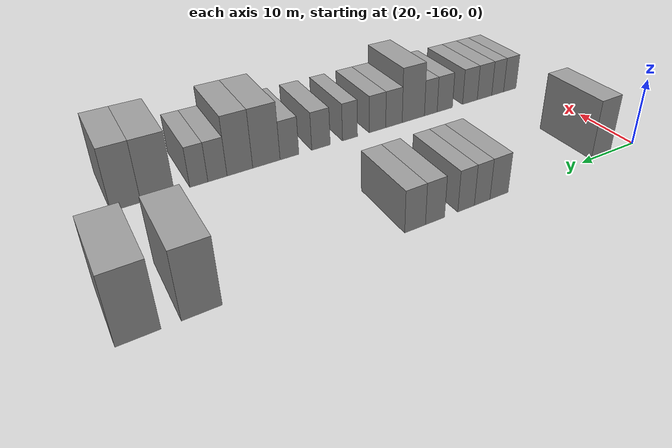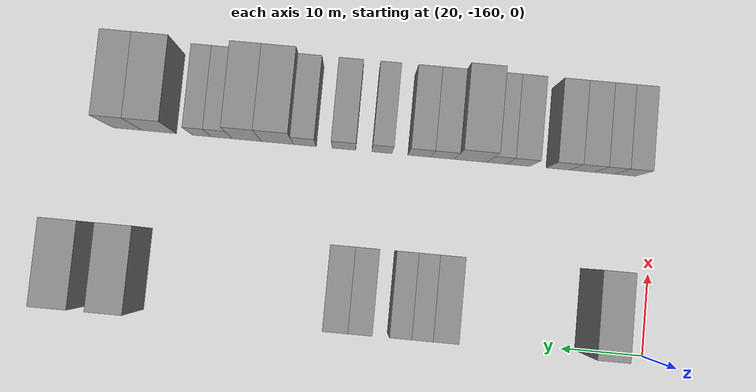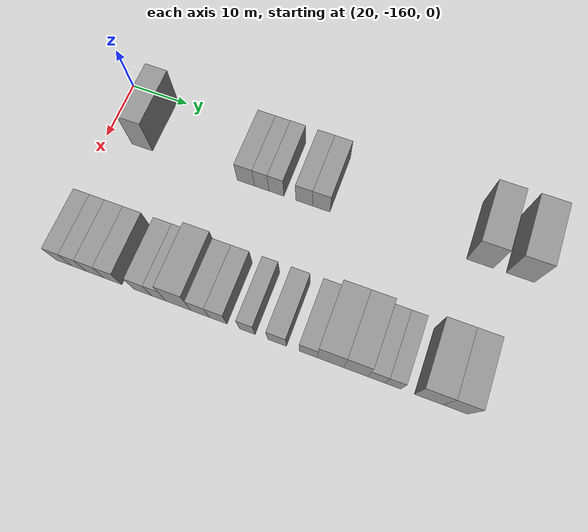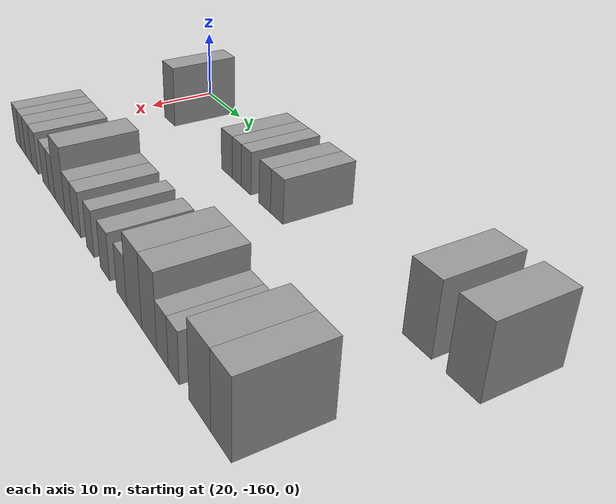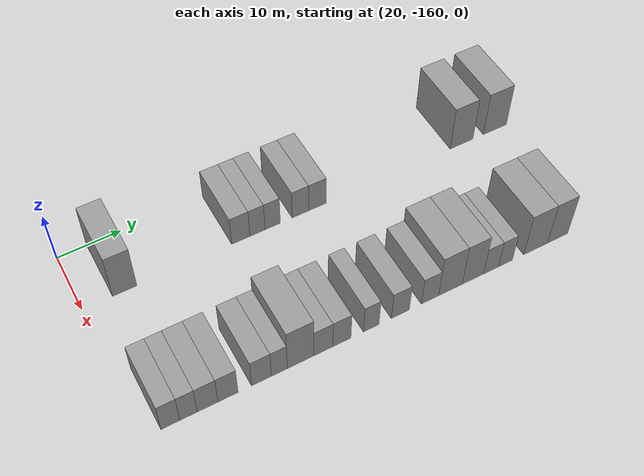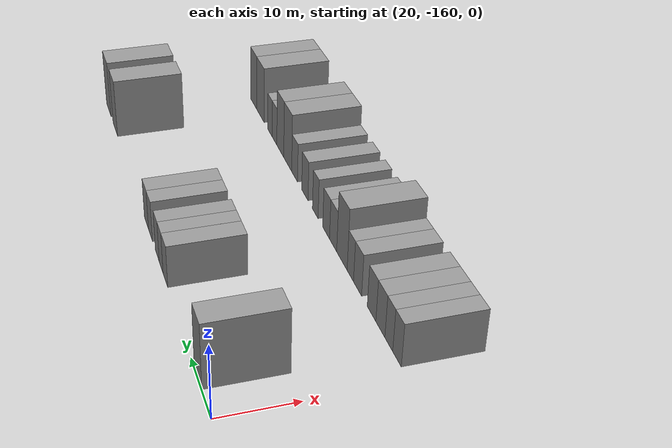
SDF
<sdf version="1.6">
 <world name="default">
  <model name="building_15">
   <static>1</static>
   <pose>25.0000 -153.5382 0 0.000000 0.000000 0.000000</pose>
   <link name="link">
    <pose>0 0 4.50 0 0 0</pose>
    <collision name="collision"><geometry><box><size>10.0000 3.7095 9.0000</size></box></geometry></collision>
    <visual name="visual">
     <cast_shadows>0</cast_shadows>
     <geometry><box><size>10.0000 3.7095 9.0000</size></box></geometry>
     <material>
      <script>
       <uri>model://grey_wall/materials/scripts</uri>
       <uri>model://grey_wall/materials/textures</uri>
       <name>vrc/grey_wall</name>
      </script>
     </material>
    </visual>
   </link>
  </model>
  <model name="building_16">
   <static>1</static>
   <pose>25.0000 -135.2273 0 0.000000 0.000000 0.000000</pose>
   <link name="link">
    <pose>0 0 3.00 0 0 0</pose>
    <collision name="collision"><geometry><box><size>10.0000 2.9708 6.0000</size></box></geometry></collision>
    <visual name="visual">
     <cast_shadows>0</cast_shadows>
     <geometry><box><size>10.0000 2.9708 6.0000</size></box></geometry>
     <material>
      <script>
       <uri>model://grey_wall/materials/scripts</uri>
       <uri>model://grey_wall/materials/textures</uri>
       <name>vrc/grey_wall</name>
      </script>
     </material>
    </visual>
   </link>
  </model>
  <model name="building_17">
   <static>1</static>
   <pose>25.0000 -132.5023 0 0.000000 0.000000 0.000000</pose>
   <link name="link">
    <pose>0 0 3.00 0 0 0</pose>
    <collision name="collision"><geometry><box><size>10.0000 2.4791 6.0000</size></box></geometry></collision>
    <visual name="visual">
     <cast_shadows>0</cast_shadows>
     <geometry><box><size>10.0000 2.4791 6.0000</size></box></geometry>
     <material>
      <script>
       <uri>model://grey_wall/materials/scripts</uri>
       <uri>model://grey_wall/materials/textures</uri>
       <name>vrc/grey_wall</name>
      </script>
     </material>
    </visual>
   </link>
  </model>
  <model name="building_18">
   <static>1</static>
   <pose>25.0000 -129.9862 0 0.000000 0.000000 0.000000</pose>
   <link name="link">
    <pose>0 0 3.00 0 0 0</pose>
    <collision name="collision"><geometry><box><size>10.0000 2.5531 6.0000</size></box></geometry></collision>
    <visual name="visual">
     <cast_shadows>0</cast_shadows>
     <geometry><box><size>10.0000 2.5531 6.0000</size></box></geometry>
     <material>
      <script>
       <uri>model://grey_wall/materials/scripts</uri>
       <uri>model://grey_wall/materials/textures</uri>
       <name>vrc/grey_wall</name>
      </script>
     </material>
    </visual>
   </link>
  </model>
  <model name="building_19">
   <static>1</static>
   <pose>25.0000 -125.3027 0 0.000000 0.000000 0.000000</pose>
   <link name="link">
    <pose>0 0 3.00 0 0 0</pose>
    <collision name="collision"><geometry><box><size>10.0000 2.8138 6.0000</size></box></geometry></collision>
    <visual name="visual">
     <cast_shadows>0</cast_shadows>
     <geometry><box><size>10.0000 2.8138 6.0000</size></box></geometry>
     <material>
      <script>
       <uri>model://grey_wall/materials/scripts</uri>
       <uri>model://grey_wall/materials/textures</uri>
       <name>vrc/grey_wall</name>
      </script>
     </material>
    </visual>
   </link>
  </model>
  <model name="building_20">
   <static>1</static>
   <pose>25.0000 -122.4214 0 0.000000 0.000000 0.000000</pose>
   <link name="link">
    <pose>0 0 3.00 0 0 0</pose>
    <collision name="collision"><geometry><box><size>10.0000 2.9488 6.0000</size></box></geometry></collision>
    <visual name="visual">
     <cast_shadows>0</cast_shadows>
     <geometry><box><size>10.0000 2.9488 6.0000</size></box></geometry>
     <material>
      <script>
       <uri>model://grey_wall/materials/scripts</uri>
       <uri>model://grey_wall/materials/textures</uri>
       <name>vrc/grey_wall</name>
      </script>
     </material>
    </visual>
   </link>
  </model>
  <model name="building_21">
   <static>1</static>
   <pose>25.0000 -96.5870 0 0.000000 0.000000 0.000000</pose>
   <link name="link">
    <pose>0 0 4.50 0 0 0</pose>
    <collision name="collision"><geometry><box><size>10.0000 4.2400 9.0000</size></box></geometry></collision>
    <visual name="visual">
     <cast_shadows>0</cast_shadows>
     <geometry><box><size>10.0000 4.2400 9.0000</size></box></geometry>
     <material>
      <script>
       <uri>model://grey_wall/materials/scripts</uri>
       <uri>model://grey_wall/materials/textures</uri>
       <name>vrc/grey_wall</name>
      </script>
     </material>
    </visual>
   </link>
  </model>
  <model name="building_22">
   <static>1</static>
   <pose>25.0000 -90.2706 0 0.000000 0.000000 0.000000</pose>
   <link name="link">
    <pose>0 0 4.50 0 0 0</pose>
    <collision name="collision"><geometry><box><size>10.0000 4.3928 9.0000</size></box></geometry></collision>
    <visual name="visual">
     <cast_shadows>0</cast_shadows>
     <geometry><box><size>10.0000 4.3928 9.0000</size></box></geometry>
     <material>
      <script>
       <uri>model://grey_wall/materials/scripts</uri>
       <uri>model://grey_wall/materials/textures</uri>
       <name>vrc/grey_wall</name>
      </script>
     </material>
    </visual>
   </link>
  </model>
  <model name="building_114">
   <static>1</static>
   <pose>47.0000 -156.3037 0 0.000000 0.000000 0.000000</pose>
   <link name="link">
    <pose>0 0 3.00 0 0 0</pose>
    <collision name="collision"><geometry><box><size>10.0000 2.6709 6.0000</size></box></geometry></collision>
    <visual name="visual">
     <cast_shadows>0</cast_shadows>
     <geometry><box><size>10.0000 2.6709 6.0000</size></box></geometry>
     <material>
      <script>
       <uri>model://grey_wall/materials/scripts</uri>
       <uri>model://grey_wall/materials/textures</uri>
       <name>vrc/grey_wall</name>
      </script>
     </material>
    </visual>
   </link>
  </model>
  <model name="building_115">
   <static>1</static>
   <pose>47.0000 -153.7130 0 0.000000 0.000000 0.000000</pose>
   <link name="link">
    <pose>0 0 3.00 0 0 0</pose>
    <collision name="collision"><geometry><box><size>10.0000 2.5105 6.0000</size></box></geometry></collision>
    <visual name="visual">
     <cast_shadows>0</cast_shadows>
     <geometry><box><size>10.0000 2.5105 6.0000</size></box></geometry>
     <material>
      <script>
       <uri>model://grey_wall/materials/scripts</uri>
       <uri>model://grey_wall/materials/textures</uri>
       <name>vrc/grey_wall</name>
      </script>
     </material>
    </visual>
   </link>
  </model>
  <model name="building_116">
   <static>1</static>
   <pose>47.0000 -150.9631 0 0.000000 0.000000 0.000000</pose>
   <link name="link">
    <pose>0 0 3.00 0 0 0</pose>
    <collision name="collision"><geometry><box><size>10.0000 2.9893 6.0000</size></box></geometry></collision>
    <visual name="visual">
     <cast_shadows>0</cast_shadows>
     <geometry><box><size>10.0000 2.9893 6.0000</size></box></geometry>
     <material>
      <script>
       <uri>model://grey_wall/materials/scripts</uri>
       <uri>model://grey_wall/materials/textures</uri>
       <name>vrc/grey_wall</name>
      </script>
     </material>
    </visual>
   </link>
  </model>
  <model name="building_117">
   <static>1</static>
   <pose>47.0000 -147.9891 0 0.000000 0.000000 0.000000</pose>
   <link name="link">
    <pose>0 0 3.00 0 0 0</pose>
    <collision name="collision"><geometry><box><size>10.0000 2.9588 6.0000</size></box></geometry></collision>
    <visual name="visual">
     <cast_shadows>0</cast_shadows>
     <geometry><box><size>10.0000 2.9588 6.0000</size></box></geometry>
     <material>
      <script>
       <uri>model://grey_wall/materials/scripts</uri>
       <uri>model://grey_wall/materials/textures</uri>
       <name>vrc/grey_wall</name>
      </script>
     </material>
    </visual>
   </link>
  </model>
  <model name="building_118">
   <static>1</static>
   <pose>47.0000 -143.0278 0 0.000000 0.000000 0.000000</pose>
   <link name="link">
    <pose>0 0 3.00 0 0 0</pose>
    <collision name="collision"><geometry><box><size>10.0000 2.9638 6.0000</size></box></geometry></collision>
    <visual name="visual">
     <cast_shadows>0</cast_shadows>
     <geometry><box><size>10.0000 2.9638 6.0000</size></box></geometry>
     <material>
      <script>
       <uri>model://grey_wall/materials/scripts</uri>
       <uri>model://grey_wall/materials/textures</uri>
       <name>vrc/grey_wall</name>
      </script>
     </material>
    </visual>
   </link>
  </model>
  <model name="building_119">
   <static>1</static>
   <pose>47.0000 -140.3447 0 0.000000 0.000000 0.000000</pose>
   <link name="link">
    <pose>0 0 3.00 0 0 0</pose>
    <collision name="collision"><geometry><box><size>10.0000 2.4025 6.0000</size></box></geometry></collision>
    <visual name="visual">
     <cast_shadows>0</cast_shadows>
     <geometry><box><size>10.0000 2.4025 6.0000</size></box></geometry>
     <material>
      <script>
       <uri>model://grey_wall/materials/scripts</uri>
       <uri>model://grey_wall/materials/textures</uri>
       <name>vrc/grey_wall</name>
      </script>
     </material>
    </visual>
   </link>
  </model>
  <model name="building_120">
   <static>1</static>
   <pose>47.0000 -137.1026 0 0.000000 0.000000 0.000000</pose>
   <link name="link">
    <pose>0 0 4.50 0 0 0</pose>
    <collision name="collision"><geometry><box><size>10.0000 4.0817 9.0000</size></box></geometry></collision>
    <visual name="visual">
     <cast_shadows>0</cast_shadows>
     <geometry><box><size>10.0000 4.0817 9.0000</size></box></geometry>
     <material>
      <script>
       <uri>model://grey_wall/materials/scripts</uri>
       <uri>model://grey_wall/materials/textures</uri>
       <name>vrc/grey_wall</name>
      </script>
     </material>
    </visual>
   </link>
  </model>
  <model name="building_121">
   <static>1</static>
   <pose>47.0000 -133.6014 0 0.000000 0.000000 0.000000</pose>
   <link name="link">
    <pose>0 0 3.00 0 0 0</pose>
    <collision name="collision"><geometry><box><size>10.0000 2.9205 6.0000</size></box></geometry></collision>
    <visual name="visual">
     <cast_shadows>0</cast_shadows>
     <geometry><box><size>10.0000 2.9205 6.0000</size></box></geometry>
     <material>
      <script>
       <uri>model://grey_wall/materials/scripts</uri>
       <uri>model://grey_wall/materials/textures</uri>
       <name>vrc/grey_wall</name>
      </script>
     </material>
    </visual>
   </link>
  </model>
  <model name="building_122">
   <static>1</static>
   <pose>47.0000 -130.7134 0 0.000000 0.000000 0.000000</pose>
   <link name="link">
    <pose>0 0 3.00 0 0 0</pose>
    <collision name="collision"><geometry><box><size>10.0000 2.8555 6.0000</size></box></geometry></collision>
    <visual name="visual">
     <cast_shadows>0</cast_shadows>
     <geometry><box><size>10.0000 2.8555 6.0000</size></box></geometry>
     <material>
      <script>
       <uri>model://grey_wall/materials/scripts</uri>
       <uri>model://grey_wall/materials/textures</uri>
       <name>vrc/grey_wall</name>
      </script>
     </material>
    </visual>
   </link>
  </model>
  <model name="building_123">
   <static>1</static>
   <pose>47.0000 -126.0434 0 0.000000 0.000000 0.000000</pose>
   <link name="link">
    <pose>0 0 3.00 0 0 0</pose>
    <collision name="collision"><geometry><box><size>10.0000 2.4846 6.0000</size></box></geometry></collision>
    <visual name="visual">
     <cast_shadows>0</cast_shadows>
     <geometry><box><size>10.0000 2.4846 6.0000</size></box></geometry>
     <material>
      <script>
       <uri>model://grey_wall/materials/scripts</uri>
       <uri>model://grey_wall/materials/textures</uri>
       <name>vrc/grey_wall</name>
      </script>
     </material>
    </visual>
   </link>
  </model>
  <model name="building_124">
   <static>1</static>
   <pose>47.0000 -121.3351 0 0.000000 0.000000 0.000000</pose>
   <link name="link">
    <pose>0 0 3.00 0 0 0</pose>
    <collision name="collision"><geometry><box><size>10.0000 2.9320 6.0000</size></box></geometry></collision>
    <visual name="visual">
     <cast_shadows>0</cast_shadows>
     <geometry><box><size>10.0000 2.9320 6.0000</size></box></geometry>
     <material>
      <script>
       <uri>model://grey_wall/materials/scripts</uri>
       <uri>model://grey_wall/materials/textures</uri>
       <name>vrc/grey_wall</name>
      </script>
     </material>
    </visual>
   </link>
  </model>
  <model name="building_125">
   <static>1</static>
   <pose>47.0000 -116.4469 0 0.000000 0.000000 0.000000</pose>
   <link name="link">
    <pose>0 0 3.00 0 0 0</pose>
    <collision name="collision"><geometry><box><size>10.0000 2.8444 6.0000</size></box></geometry></collision>
    <visual name="visual">
     <cast_shadows>0</cast_shadows>
     <geometry><box><size>10.0000 2.8444 6.0000</size></box></geometry>
     <material>
      <script>
       <uri>model://grey_wall/materials/scripts</uri>
       <uri>model://grey_wall/materials/textures</uri>
       <name>vrc/grey_wall</name>
      </script>
     </material>
    </visual>
   </link>
  </model>
  <model name="building_126">
   <static>1</static>
   <pose>47.0000 -113.0210 0 0.000000 0.000000 0.000000</pose>
   <link name="link">
    <pose>0 0 4.50 0 0 0</pose>
    <collision name="collision"><geometry><box><size>10.0000 4.0075 9.0000</size></box></geometry></collision>
    <visual name="visual">
     <cast_shadows>0</cast_shadows>
     <geometry><box><size>10.0000 4.0075 9.0000</size></box></geometry>
     <material>
      <script>
       <uri>model://grey_wall/materials/scripts</uri>
       <uri>model://grey_wall/materials/textures</uri>
       <name>vrc/grey_wall</name>
      </script>
     </material>
    </visual>
   </link>
  </model>
  <model name="building_127">
   <static>1</static>
   <pose>47.0000 -109.2031 0 0.000000 0.000000 0.000000</pose>
   <link name="link">
    <pose>0 0 4.50 0 0 0</pose>
    <collision name="collision"><geometry><box><size>10.0000 3.6282 9.0000</size></box></geometry></collision>
    <visual name="visual">
     <cast_shadows>0</cast_shadows>
     <geometry><box><size>10.0000 3.6282 9.0000</size></box></geometry>
     <material>
      <script>
       <uri>model://grey_wall/materials/scripts</uri>
       <uri>model://grey_wall/materials/textures</uri>
       <name>vrc/grey_wall</name>
      </script>
     </material>
    </visual>
   </link>
  </model>
  <model name="building_128">
   <static>1</static>
   <pose>47.0000 -106.0815 0 0.000000 0.000000 0.000000</pose>
   <link name="link">
    <pose>0 0 3.00 0 0 0</pose>
    <collision name="collision"><geometry><box><size>10.0000 2.6151 6.0000</size></box></geometry></collision>
    <visual name="visual">
     <cast_shadows>0</cast_shadows>
     <geometry><box><size>10.0000 2.6151 6.0000</size></box></geometry>
     <material>
      <script>
       <uri>model://grey_wall/materials/scripts</uri>
       <uri>model://grey_wall/materials/textures</uri>
       <name>vrc/grey_wall</name>
      </script>
     </material>
    </visual>
   </link>
  </model>
  <model name="building_129">
   <static>1</static>
   <pose>47.0000 -103.5682 0 0.000000 0.000000 0.000000</pose>
   <link name="link">
    <pose>0 0 3.00 0 0 0</pose>
    <collision name="collision"><geometry><box><size>10.0000 2.4115 6.0000</size></box></geometry></collision>
    <visual name="visual">
     <cast_shadows>0</cast_shadows>
     <geometry><box><size>10.0000 2.4115 6.0000</size></box></geometry>
     <material>
      <script>
       <uri>model://grey_wall/materials/scripts</uri>
       <uri>model://grey_wall/materials/textures</uri>
       <name>vrc/grey_wall</name>
      </script>
     </material>
    </visual>
   </link>
  </model>
  <model name="building_130">
   <static>1</static>
   <pose>47.0000 -98.2461 0 0.000000 0.000000 0.000000</pose>
   <link name="link">
    <pose>0 0 4.50 0 0 0</pose>
    <collision name="collision"><geometry><box><size>10.0000 4.2326 9.0000</size></box></geometry></collision>
    <visual name="visual">
     <cast_shadows>0</cast_shadows>
     <geometry><box><size>10.0000 4.2326 9.0000</size></box></geometry>
     <material>
      <script>
       <uri>model://grey_wall/materials/scripts</uri>
       <uri>model://grey_wall/materials/textures</uri>
       <name>vrc/grey_wall</name>
      </script>
     </material>
    </visual>
   </link>
  </model>
  <model name="building_131">
   <static>1</static>
   <pose>47.0000 -94.3024 0 0.000000 0.000000 0.000000</pose>
   <link name="link">
    <pose>0 0 4.50 0 0 0</pose>
    <collision name="collision"><geometry><box><size>10.0000 3.6549 9.0000</size></box></geometry></collision>
    <visual name="visual">
     <cast_shadows>0</cast_shadows>
     <geometry><box><size>10.0000 3.6549 9.0000</size></box></geometry>
     <material>
      <script>
       <uri>model://grey_wall/materials/scripts</uri>
       <uri>model://grey_wall/materials/textures</uri>
       <name>vrc/grey_wall</name>
      </script>
     </material>
    </visual>
   </link>
  </model>
 </world>
</sdf>
